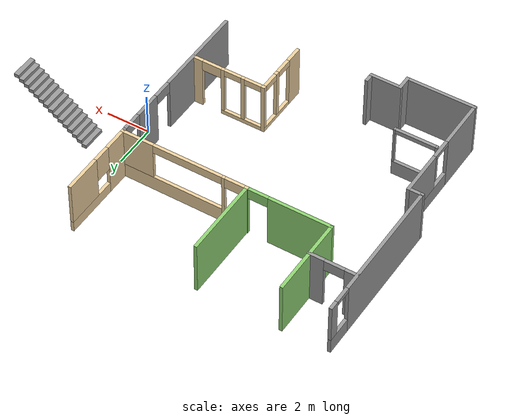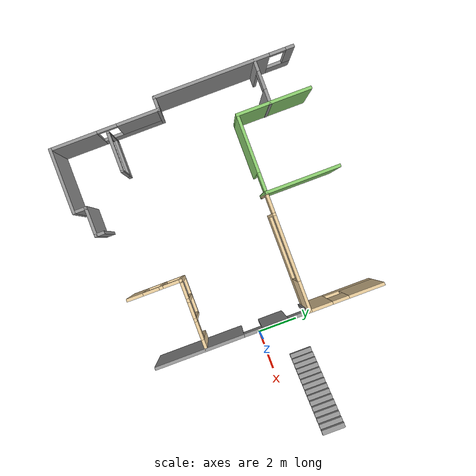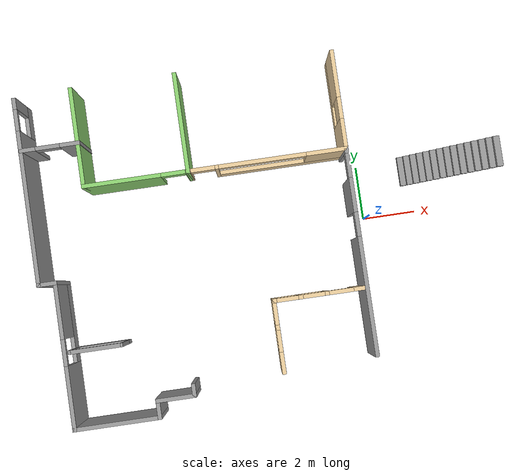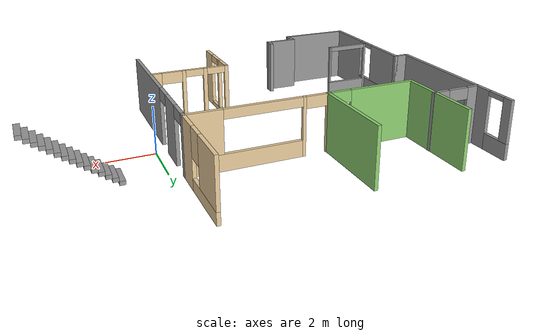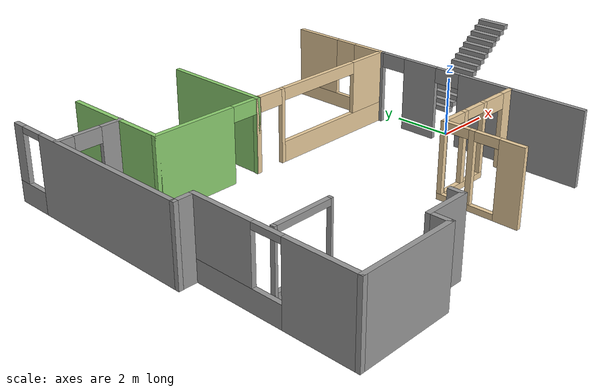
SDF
<sdf version="1.6">
 <model name="dunder_mifflin_scranton_full">
  <pose>-0.003881 -0.031915 0 0 -0 0</pose>
  <link name="Stairs_0">
   <visual name="Stairs_0_Visual_0">
    <pose>1.73013 1.63779 0.083333 0 -0 1.5708</pose>
    <geometry><box><size>1.12038 0.229766 0.166667</size></box></geometry>
    <material>
     <script><uri>file://media/materials/scripts/gazebo.material</uri><name>Gazebo/Grey</name></script>
     <ambient>1 1 1 1</ambient>
    </material>
    <meta><layer>0</layer></meta>
   </visual>
   <collision name="Stairs_0_Collision_0">
    <geometry><box><size>1.12038 0.229766 0.166667</size></box></geometry>
    <pose>1.73013 1.63779 0.083333 0 -0 1.5708</pose>
   </collision>
   <visual name="Stairs_0_Visual_1">
    <pose>1.9599 1.63779 0.25 0 -0 1.5708</pose>
    <geometry><box><size>1.12038 0.229766 0.166667</size></box></geometry>
    <material>
     <script><uri>file://media/materials/scripts/gazebo.material</uri><name>Gazebo/Grey</name></script>
     <ambient>1 1 1 1</ambient>
    </material>
    <meta><layer>0</layer></meta>
   </visual>
   <collision name="Stairs_0_Collision_1">
    <geometry><box><size>1.12038 0.229766 0.166667</size></box></geometry>
    <pose>1.9599 1.63779 0.25 0 -0 1.5708</pose>
   </collision>
   <visual name="Stairs_0_Visual_2">
    <pose>2.18967 1.63779 0.416667 0 -0 1.5708</pose>
    <geometry><box><size>1.12038 0.229766 0.166667</size></box></geometry>
    <material>
     <script><uri>file://media/materials/scripts/gazebo.material</uri><name>Gazebo/Grey</name></script>
     <ambient>1 1 1 1</ambient>
    </material>
    <meta><layer>0</layer></meta>
   </visual>
   <collision name="Stairs_0_Collision_2">
    <geometry><box><size>1.12038 0.229766 0.166667</size></box></geometry>
    <pose>2.18967 1.63779 0.416667 0 -0 1.5708</pose>
   </collision>
   <visual name="Stairs_0_Visual_3">
    <pose>2.41944 1.63779 0.583333 0 -0 1.5708</pose>
    <geometry><box><size>1.12038 0.229766 0.166667</size></box></geometry>
    <material>
     <script><uri>file://media/materials/scripts/gazebo.material</uri><name>Gazebo/Grey</name></script>
     <ambient>1 1 1 1</ambient>
    </material>
    <meta><layer>0</layer></meta>
   </visual>
   <collision name="Stairs_0_Collision_3">
    <geometry><box><size>1.12038 0.229766 0.166667</size></box></geometry>
    <pose>2.41944 1.63779 0.583333 0 -0 1.5708</pose>
   </collision>
   <visual name="Stairs_0_Visual_4">
    <pose>2.6492 1.63779 0.75 0 -0 1.5708</pose>
    <geometry><box><size>1.12038 0.229766 0.166667</size></box></geometry>
    <material>
     <script><uri>file://media/materials/scripts/gazebo.material</uri><name>Gazebo/Grey</name></script>
     <ambient>1 1 1 1</ambient>
    </material>
    <meta><layer>0</layer></meta>
   </visual>
   <collision name="Stairs_0_Collision_4">
    <geometry><box><size>1.12038 0.229766 0.166667</size></box></geometry>
    <pose>2.6492 1.63779 0.75 0 -0 1.5708</pose>
   </collision>
   <visual name="Stairs_0_Visual_5">
    <pose>2.87897 1.63779 0.916667 0 -0 1.5708</pose>
    <geometry><box><size>1.12038 0.229766 0.166667</size></box></geometry>
    <material>
     <script><uri>file://media/materials/scripts/gazebo.material</uri><name>Gazebo/Grey</name></script>
     <ambient>1 1 1 1</ambient>
    </material>
    <meta><layer>0</layer></meta>
   </visual>
   <collision name="Stairs_0_Collision_5">
    <geometry><box><size>1.12038 0.229766 0.166667</size></box></geometry>
    <pose>2.87897 1.63779 0.916667 0 -0 1.5708</pose>
   </collision>
   <visual name="Stairs_0_Visual_6">
    <pose>3.10873 1.63779 1.08333 0 -0 1.5708</pose>
    <geometry><box><size>1.12038 0.229766 0.166667</size></box></geometry>
    <material>
     <script><uri>file://media/materials/scripts/gazebo.material</uri><name>Gazebo/Grey</name></script>
     <ambient>1 1 1 1</ambient>
    </material>
    <meta><layer>0</layer></meta>
   </visual>
   <collision name="Stairs_0_Collision_6">
    <geometry><box><size>1.12038 0.229766 0.166667</size></box></geometry>
    <pose>3.10873 1.63779 1.08333 0 -0 1.5708</pose>
   </collision>
   <visual name="Stairs_0_Visual_7">
    <pose>3.3385 1.63779 1.25 0 -0 1.5708</pose>
    <geometry><box><size>1.12038 0.229766 0.166667</size></box></geometry>
    <material>
     <script><uri>file://media/materials/scripts/gazebo.material</uri><name>Gazebo/Grey</name></script>
     <ambient>1 1 1 1</ambient>
    </material>
    <meta><layer>0</layer></meta>
   </visual>
   <collision name="Stairs_0_Collision_7">
    <geometry><box><size>1.12038 0.229766 0.166667</size></box></geometry>
    <pose>3.3385 1.63779 1.25 0 -0 1.5708</pose>
   </collision>
   <visual name="Stairs_0_Visual_8">
    <pose>3.56827 1.63779 1.41667 0 -0 1.5708</pose>
    <geometry><box><size>1.12038 0.229766 0.166667</size></box></geometry>
    <material>
     <script><uri>file://media/materials/scripts/gazebo.material</uri><name>Gazebo/Grey</name></script>
     <ambient>1 1 1 1</ambient>
    </material>
    <meta><layer>0</layer></meta>
   </visual>
   <collision name="Stairs_0_Collision_8">
    <geometry><box><size>1.12038 0.229766 0.166667</size></box></geometry>
    <pose>3.56827 1.63779 1.41667 0 -0 1.5708</pose>
   </collision>
   <visual name="Stairs_0_Visual_9">
    <pose>3.79803 1.63779 1.58333 0 -0 1.5708</pose>
    <geometry><box><size>1.12038 0.229766 0.166667</size></box></geometry>
    <material>
     <script><uri>file://media/materials/scripts/gazebo.material</uri><name>Gazebo/Grey</name></script>
     <ambient>1 1 1 1</ambient>
    </material>
    <meta><layer>0</layer></meta>
   </visual>
   <collision name="Stairs_0_Collision_9">
    <geometry><box><size>1.12038 0.229766 0.166667</size></box></geometry>
    <pose>3.79803 1.63779 1.58333 0 -0 1.5708</pose>
   </collision>
   <visual name="Stairs_0_Visual_10">
    <pose>4.0278 1.63779 1.75 0 -0 1.5708</pose>
    <geometry><box><size>1.12038 0.229766 0.166667</size></box></geometry>
    <material>
     <script><uri>file://media/materials/scripts/gazebo.material</uri><name>Gazebo/Grey</name></script>
     <ambient>1 1 1 1</ambient>
    </material>
    <meta><layer>0</layer></meta>
   </visual>
   <collision name="Stairs_0_Collision_10">
    <geometry><box><size>1.12038 0.229766 0.166667</size></box></geometry>
    <pose>4.0278 1.63779 1.75 0 -0 1.5708</pose>
   </collision>
   <visual name="Stairs_0_Visual_11">
    <pose>4.25757 1.63779 1.91667 0 -0 1.5708</pose>
    <geometry><box><size>1.12038 0.229766 0.166667</size></box></geometry>
    <material>
     <script><uri>file://media/materials/scripts/gazebo.material</uri><name>Gazebo/Grey</name></script>
     <ambient>1 1 1 1</ambient>
    </material>
    <meta><layer>0</layer></meta>
   </visual>
   <collision name="Stairs_0_Collision_11">
    <geometry><box><size>1.12038 0.229766 0.166667</size></box></geometry>
    <pose>4.25757 1.63779 1.91667 0 -0 1.5708</pose>
   </collision>
   <visual name="Stairs_0_Visual_12">
    <pose>4.48733 1.63779 2.08333 0 -0 1.5708</pose>
    <geometry><box><size>1.12038 0.229766 0.166667</size></box></geometry>
    <material>
     <script><uri>file://media/materials/scripts/gazebo.material</uri><name>Gazebo/Grey</name></script>
     <ambient>1 1 1 1</ambient>
    </material>
    <meta><layer>0</layer></meta>
   </visual>
   <collision name="Stairs_0_Collision_12">
    <geometry><box><size>1.12038 0.229766 0.166667</size></box></geometry>
    <pose>4.48733 1.63779 2.08333 0 -0 1.5708</pose>
   </collision>
   <visual name="Stairs_0_Visual_13">
    <pose>4.7171 1.63779 2.25 0 -0 1.5708</pose>
    <geometry><box><size>1.12038 0.229766 0.166667</size></box></geometry>
    <material>
     <script><uri>file://media/materials/scripts/gazebo.material</uri><name>Gazebo/Grey</name></script>
     <ambient>1 1 1 1</ambient>
    </material>
    <meta><layer>0</layer></meta>
   </visual>
   <collision name="Stairs_0_Collision_13">
    <geometry><box><size>1.12038 0.229766 0.166667</size></box></geometry>
    <pose>4.7171 1.63779 2.25 0 -0 1.5708</pose>
   </collision>
   <visual name="Stairs_0_Visual_14">
    <pose>4.94687 1.63779 2.41667 0 -0 1.5708</pose>
    <geometry><box><size>1.12038 0.229766 0.166667</size></box></geometry>
    <material>
     <script><uri>file://media/materials/scripts/gazebo.material</uri><name>Gazebo/Grey</name></script>
     <ambient>1 1 1 1</ambient>
    </material>
    <meta><layer>0</layer></meta>
   </visual>
   <collision name="Stairs_0_Collision_14">
    <geometry><box><size>1.12038 0.229766 0.166667</size></box></geometry>
    <pose>4.94687 1.63779 2.41667 0 -0 1.5708</pose>
   </collision>
  </link>
  <link name="Wall_10">
   <collision name="Wall_10_Collision">
    <geometry><box><size>1.5 0.15 2.5</size></box></geometry>
    <pose>0 0 1.25 0 -0 0</pose>
   </collision>
   <visual name="Wall_10_Visual">
    <pose>0 0 1.25 0 -0 0</pose>
    <geometry><box><size>1.5 0.15 2.5</size></box></geometry>
    <material>
     <script><uri>file://media/materials/scripts/gazebo.material</uri><name>Gazebo/Grey</name></script>
     <ambient>1 1 1 1</ambient>
    </material>
    <meta><layer>0</layer></meta>
   </visual>
   <pose>-7.95712 -5.55 0 0 -0 3.14159</pose>
  </link>
  <link name="Wall_11">
   <collision name="Wall_11_Collision">
    <geometry><box><size>0.75 0.15 2.5</size></box></geometry>
    <pose>0 0 1.25 0 -0 0</pose>
   </collision>
   <visual name="Wall_11_Visual">
    <pose>0 0 1.25 0 -0 0</pose>
    <geometry><box><size>0.75 0.15 2.5</size></box></geometry>
    <material>
     <script><uri>file://media/materials/scripts/gazebo.material</uri><name>Gazebo/Grey</name></script>
     <ambient>1 1 1 1</ambient>
    </material>
    <meta><layer>0</layer></meta>
   </visual>
   <pose>-8.63212 -5.85 0 0 -0 -1.5708</pose>
  </link>
  <link name="Wall_12">
   <collision name="Wall_12_Collision">
    <geometry><box><size>3.25 0.15 2.5</size></box></geometry>
    <pose>0 0 1.25 0 -0 0</pose>
   </collision>
   <visual name="Wall_12_Visual">
    <pose>0 0 1.25 0 -0 0</pose>
    <geometry><box><size>3.25 0.15 2.5</size></box></geometry>
    <material>
     <script><uri>file://media/materials/scripts/gazebo.material</uri><name>Gazebo/Grey</name></script>
     <ambient>1 1 1 1</ambient>
    </material>
    <meta><layer>0</layer></meta>
   </visual>
   <pose>-10.1821 -6.15 0 0 -0 3.14159</pose>
  </link>
  <link name="Wall_13">
   <pose>-11.7321 -3.475 0 0 -0 1.5708</pose>
   <visual name="Wall_13_Visual_0">
    <pose>-1.56118 0 1.25 0 -0 0</pose>
    <geometry><box><size>2.37764 0.15 2.5</size></box></geometry>
    <material>
     <script><uri>file://media/materials/scripts/gazebo.material</uri><name>Gazebo/Grey</name></script>
     <ambient>1 1 1 1</ambient>
    </material>
    <meta><layer>0</layer></meta>
   </visual>
   <collision name="Wall_13_Collision_0">
    <geometry><box><size>2.37764 0.15 2.5</size></box></geometry>
    <pose>-1.56118 0 1.25 0 -0 0</pose>
   </collision>
   <visual name="Wall_13_Visual_1">
    <pose>1.18882 0 0.35 0 -0 0</pose>
    <geometry><box><size>3.12236 0.15 0.7</size></box></geometry>
    <material>
     <script><uri>file://media/materials/scripts/gazebo.material</uri><name>Gazebo/Grey</name></script>
     <ambient>1 1 1 1</ambient>
    </material>
    <meta><layer>0</layer></meta>
   </visual>
   <collision name="Wall_13_Collision_1">
    <geometry><box><size>3.12236 0.15 0.7</size></box></geometry>
    <pose>1.18882 0 0.35 0 -0 0</pose>
   </collision>
   <visual name="Wall_13_Visual_2">
    <pose>1.67832 0 1.6 0 -0 0</pose>
    <geometry><box><size>2.14336 0.15 1.8</size></box></geometry>
    <material>
     <script><uri>file://media/materials/scripts/gazebo.material</uri><name>Gazebo/Grey</name></script>
     <ambient>1 1 1 1</ambient>
    </material>
    <meta><layer>0</layer></meta>
   </visual>
   <collision name="Wall_13_Collision_2">
    <geometry><box><size>2.14336 0.15 1.8</size></box></geometry>
    <pose>1.67832 0 1.6 0 -0 0</pose>
   </collision>
   <visual name="Wall_13_Visual_3">
    <pose>0.117145 0 2.4 0 -0 0</pose>
    <geometry><box><size>0.979 0.15 0.2</size></box></geometry>
    <material>
     <script><uri>file://media/materials/scripts/gazebo.material</uri><name>Gazebo/Grey</name></script>
     <ambient>1 1 1 1</ambient>
    </material>
    <meta><layer>0</layer></meta>
   </visual>
   <collision name="Wall_13_Collision_3">
    <geometry><box><size>0.979 0.15 0.2</size></box></geometry>
    <pose>0.117145 0 2.4 0 -0 0</pose>
   </collision>
  </link>
  <link name="Wall_14">
   <collision name="Wall_14_Collision">
    <geometry><box><size>0.75 0.15 2.5</size></box></geometry>
    <pose>0 0 1.25 0 -0 0</pose>
   </collision>
   <visual name="Wall_14_Visual">
    <pose>0 0 1.25 0 -0 0</pose>
    <geometry><box><size>0.75 0.15 2.5</size></box></geometry>
    <material>
     <script><uri>file://media/materials/scripts/gazebo.material</uri><name>Gazebo/Grey</name></script>
     <ambient>1 1 1 1</ambient>
    </material>
    <meta><layer>0</layer></meta>
   </visual>
   <pose>-12.0321 -0.8 0 0 -0 3.14159</pose>
  </link>
  <link name="Wall_15">
   <pose>-12.3321 2.625 0 0 -0 1.5708</pose>
   <visual name="Wall_15_Visual_0">
    <pose>-0.612803 0 1.25 0 -0 0</pose>
    <geometry><box><size>5.7744 0.15 2.5</size></box></geometry>
    <material>
     <script><uri>file://media/materials/scripts/gazebo.material</uri><name>Gazebo/Grey</name></script>
     <ambient>1 1 1 1</ambient>
    </material>
    <meta><layer>0</layer></meta>
   </visual>
   <collision name="Wall_15_Collision_0">
    <geometry><box><size>5.7744 0.15 2.5</size></box></geometry>
    <pose>-0.612803 0 1.25 0 -0 0</pose>
   </collision>
   <visual name="Wall_15_Visual_1">
    <pose>2.8872 0 0.35 0 -0 0</pose>
    <geometry><box><size>1.22561 0.15 0.7</size></box></geometry>
    <material>
     <script><uri>file://media/materials/scripts/gazebo.material</uri><name>Gazebo/Grey</name></script>
     <ambient>1 1 1 1</ambient>
    </material>
    <meta><layer>0</layer></meta>
   </visual>
   <collision name="Wall_15_Collision_1">
    <geometry><box><size>1.22561 0.15 0.7</size></box></geometry>
    <pose>2.8872 0 0.35 0 -0 0</pose>
   </collision>
   <visual name="Wall_15_Visual_2">
    <pose>3.2872 0 1.6 0 -0 0</pose>
    <geometry><box><size>0.425605 0.15 1.8</size></box></geometry>
    <material>
     <script><uri>file://media/materials/scripts/gazebo.material</uri><name>Gazebo/Grey</name></script>
     <ambient>1 1 1 1</ambient>
    </material>
    <meta><layer>0</layer></meta>
   </visual>
   <collision name="Wall_15_Collision_2">
    <geometry><box><size>0.425605 0.15 1.8</size></box></geometry>
    <pose>3.2872 0 1.6 0 -0 0</pose>
   </collision>
   <visual name="Wall_15_Visual_3">
    <pose>2.6744 0 2.4 0 -0 0</pose>
    <geometry><box><size>0.8 0.15 0.2</size></box></geometry>
    <material>
     <script><uri>file://media/materials/scripts/gazebo.material</uri><name>Gazebo/Grey</name></script>
     <ambient>1 1 1 1</ambient>
    </material>
    <meta><layer>0</layer></meta>
   </visual>
   <collision name="Wall_15_Collision_3">
    <geometry><box><size>0.8 0.15 0.2</size></box></geometry>
    <pose>2.6744 0 2.4 0 -0 0</pose>
   </collision>
  </link>
  <link name="Wall_19">
   <collision name="Wall_19_Collision">
    <geometry><box><size>3.75 0.15 2.5</size></box></geometry>
    <pose>0 0 1.25 0 -0 0</pose>
   </collision>
   <visual name="Wall_19_Visual">
    <pose>0 0 1.25 0 -0 0</pose>
    <geometry><box><size>3.75 0.15 2.5</size></box></geometry>
    <material>
     <script><uri>file://media/materials/scripts/gazebo.material</uri><name>Gazebo/Grey</name></script>
     <ambient>0.556863 0.823529 0.443137 1</ambient>
    </material>
    <meta><layer>0</layer></meta>
   </visual>
   <pose>-10.2322 4.33925 0 0 -0 -1.5708</pose>
  </link>
  <link name="Wall_20">
   <pose>-8.30724 2.53925 0 0 -0 0</pose>
   <visual name="Wall_20_Visual_0">
    <pose>-0.536103 0 1.25 0 -0 0</pose>
    <geometry><box><size>2.92779 0.15 2.5</size></box></geometry>
    <material>
     <script><uri>file://media/materials/scripts/gazebo.material</uri><name>Gazebo/Grey</name></script>
     <ambient>0.556863 0.823529 0.443137 1</ambient>
    </material>
    <meta><layer>0</layer></meta>
   </visual>
   <collision name="Wall_20_Collision_0">
    <geometry><box><size>2.92779 0.15 2.5</size></box></geometry>
    <pose>-0.536103 0 1.25 0 -0 0</pose>
   </collision>
   <visual name="Wall_20_Visual_1">
    <pose>1.9139 0 1.25 0 -0 0</pose>
    <geometry><box><size>0.172206 0.15 2.5</size></box></geometry>
    <material>
     <script><uri>file://media/materials/scripts/gazebo.material</uri><name>Gazebo/Grey</name></script>
     <ambient>0.556863 0.823529 0.443137 1</ambient>
    </material>
    <meta><layer>0</layer></meta>
   </visual>
   <collision name="Wall_20_Collision_1">
    <geometry><box><size>0.172206 0.15 2.5</size></box></geometry>
    <pose>1.9139 0 1.25 0 -0 0</pose>
   </collision>
   <visual name="Wall_20_Visual_2">
    <pose>1.37779 0 2.25 0 -0 0</pose>
    <geometry><box><size>0.9 0.15 0.5</size></box></geometry>
    <material>
     <script><uri>file://media/materials/scripts/gazebo.material</uri><name>Gazebo/Grey</name></script>
     <ambient>0.556863 0.823529 0.443137 1</ambient>
    </material>
    <meta><layer>0</layer></meta>
   </visual>
   <collision name="Wall_20_Collision_2">
    <geometry><box><size>0.9 0.15 0.5</size></box></geometry>
    <pose>1.37779 0 2.25 0 -0 0</pose>
   </collision>
  </link>
  <link name="Wall_21">
   <collision name="Wall_21_Collision">
    <geometry><box><size>3.75 0.15 2.5</size></box></geometry>
    <pose>0 0 1.25 0 -0 0</pose>
   </collision>
   <visual name="Wall_21_Visual">
    <pose>0 0 1.25 0 -0 0</pose>
    <geometry><box><size>3.75 0.15 2.5</size></box></geometry>
    <material>
     <script><uri>file://media/materials/scripts/gazebo.material</uri><name>Gazebo/Grey</name></script>
     <ambient>0.556863 0.823529 0.443137 1</ambient>
    </material>
    <meta><layer>0</layer></meta>
   </visual>
   <pose>-6.38225 4.33925 0 0 -0 1.5708</pose>
  </link>
  <link name="Wall_23">
   <pose>-3.45724 2.53925 0 0 -0 0</pose>
   <visual name="Wall_23_Visual_0">
    <pose>-2.91414 0 1.25 0 -0 0</pose>
    <geometry><box><size>0.171718 0.15 2.5</size></box></geometry>
    <material>
     <script><uri>file://media/materials/scripts/gazebo.material</uri><name>Gazebo/Grey</name></script>
     <ambient>0.921569 0.807843 0.615686 1</ambient>
    </material>
    <meta><layer>0</layer></meta>
   </visual>
   <collision name="Wall_23_Collision_0">
    <geometry><box><size>0.171718 0.15 2.5</size></box></geometry>
    <pose>-2.91414 0 1.25 0 -0 0</pose>
   </collision>
   <visual name="Wall_23_Visual_1">
    <pose>-1.86179 0 1.25 0 -0 0</pose>
    <geometry><box><size>0.132993 0.15 2.5</size></box></geometry>
    <material>
     <script><uri>file://media/materials/scripts/gazebo.material</uri><name>Gazebo/Grey</name></script>
     <ambient>0.921569 0.807843 0.615686 1</ambient>
    </material>
    <meta><layer>0</layer></meta>
   </visual>
   <collision name="Wall_23_Collision_1">
    <geometry><box><size>0.132993 0.15 2.5</size></box></geometry>
    <pose>-1.86179 0 1.25 0 -0 0</pose>
   </collision>
   <visual name="Wall_23_Visual_2">
    <pose>0.602356 0 0.35 0 -0 0</pose>
    <geometry><box><size>4.79529 0.15 0.7</size></box></geometry>
    <material>
     <script><uri>file://media/materials/scripts/gazebo.material</uri><name>Gazebo/Grey</name></script>
     <ambient>0.921569 0.807843 0.615686 1</ambient>
    </material>
    <meta><layer>0</layer></meta>
   </visual>
   <collision name="Wall_23_Collision_2">
    <geometry><box><size>4.79529 0.15 0.7</size></box></geometry>
    <pose>0.602356 0 0.35 0 -0 0</pose>
   </collision>
   <visual name="Wall_23_Visual_3">
    <pose>2.22271 0 1.6 0 -0 0</pose>
    <geometry><box><size>1.55459 0.15 1.8</size></box></geometry>
    <material>
     <script><uri>file://media/materials/scripts/gazebo.material</uri><name>Gazebo/Grey</name></script>
     <ambient>0.921569 0.807843 0.615686 1</ambient>
    </material>
    <meta><layer>0</layer></meta>
   </visual>
   <collision name="Wall_23_Collision_3">
    <geometry><box><size>1.55459 0.15 1.8</size></box></geometry>
    <pose>2.22271 0 1.6 0 -0 0</pose>
   </collision>
   <visual name="Wall_23_Visual_4">
    <pose>-2.37828 0 2.25 0 -0 0</pose>
    <geometry><box><size>0.9 0.15 0.5</size></box></geometry>
    <material>
     <script><uri>file://media/materials/scripts/gazebo.material</uri><name>Gazebo/Grey</name></script>
     <ambient>0.921569 0.807843 0.615686 1</ambient>
    </material>
    <meta><layer>0</layer></meta>
   </visual>
   <collision name="Wall_23_Collision_4">
    <geometry><box><size>0.9 0.15 0.5</size></box></geometry>
    <pose>-2.37828 0 2.25 0 -0 0</pose>
   </collision>
   <visual name="Wall_23_Visual_5">
    <pose>-0.174937 0 2.3 0 -0 0</pose>
    <geometry><box><size>3.2407 0.15 0.4</size></box></geometry>
    <material>
     <script><uri>file://media/materials/scripts/gazebo.material</uri><name>Gazebo/Grey</name></script>
     <ambient>0.921569 0.807843 0.615686 1</ambient>
    </material>
    <meta><layer>0</layer></meta>
   </visual>
   <collision name="Wall_23_Collision_5">
    <geometry><box><size>3.2407 0.15 0.4</size></box></geometry>
    <pose>-0.174937 0 2.3 0 -0 0</pose>
   </collision>
  </link>
  <link name="Wall_24">
   <pose>-0.532245 4.33925 0 0 -0 1.5708</pose>
   <visual name="Wall_24_Visual_0">
    <pose>-1.28185 0 1.25 0 -0 0</pose>
    <geometry><box><size>1.1863 0.15 2.5</size></box></geometry>
    <material>
     <script><uri>file://media/materials/scripts/gazebo.material</uri><name>Gazebo/Grey</name></script>
     <ambient>0.921569 0.807843 0.615686 1</ambient>
    </material>
    <meta><layer>0</layer></meta>
   </visual>
   <collision name="Wall_24_Collision_0">
    <geometry><box><size>1.1863 0.15 2.5</size></box></geometry>
    <pose>-1.28185 0 1.25 0 -0 0</pose>
   </collision>
   <visual name="Wall_24_Visual_1">
    <pose>0.59315 0 0.25 0 -0 0</pose>
    <geometry><box><size>2.5637 0.15 0.5</size></box></geometry>
    <material>
     <script><uri>file://media/materials/scripts/gazebo.material</uri><name>Gazebo/Grey</name></script>
     <ambient>0.921569 0.807843 0.615686 1</ambient>
    </material>
    <meta><layer>0</layer></meta>
   </visual>
   <collision name="Wall_24_Collision_1">
    <geometry><box><size>2.5637 0.15 0.5</size></box></geometry>
    <pose>0.59315 0 0.25 0 -0 0</pose>
   </collision>
   <visual name="Wall_24_Visual_2">
    <pose>0.99315 0 1.5 0 -0 0</pose>
    <geometry><box><size>1.7637 0.15 2</size></box></geometry>
    <material>
     <script><uri>file://media/materials/scripts/gazebo.material</uri><name>Gazebo/Grey</name></script>
     <ambient>0.921569 0.807843 0.615686 1</ambient>
    </material>
    <meta><layer>0</layer></meta>
   </visual>
   <collision name="Wall_24_Collision_2">
    <geometry><box><size>1.7637 0.15 2</size></box></geometry>
    <pose>0.99315 0 1.5 0 -0 0</pose>
   </collision>
   <visual name="Wall_24_Visual_3">
    <pose>-0.288699 0 1.9 0 -0 0</pose>
    <geometry><box><size>0.8 0.15 1.2</size></box></geometry>
    <material>
     <script><uri>file://media/materials/scripts/gazebo.material</uri><name>Gazebo/Grey</name></script>
     <ambient>0.921569 0.807843 0.615686 1</ambient>
    </material>
    <meta><layer>0</layer></meta>
   </visual>
   <collision name="Wall_24_Collision_3">
    <geometry><box><size>0.8 0.15 1.2</size></box></geometry>
    <pose>-0.288699 0 1.9 0 -0 0</pose>
   </collision>
  </link>
  <link name="Wall_26">
   <pose>-0.532245 -1.26075 0 0 -0 -1.5708</pose>
   <visual name="Wall_26_Visual_0">
    <pose>-3.74743 0 1.25 0 -0 0</pose>
    <geometry><box><size>0.255133 0.15 2.5</size></box></geometry>
    <material>
     <script><uri>file://media/materials/scripts/gazebo.material</uri><name>Gazebo/Grey</name></script>
     <ambient>1 1 1 1</ambient>
    </material>
    <meta><layer>0</layer></meta>
   </visual>
   <collision name="Wall_26_Collision_0">
    <geometry><box><size>0.255133 0.15 2.5</size></box></geometry>
    <pose>-3.74743 0 1.25 0 -0 0</pose>
   </collision>
   <visual name="Wall_26_Visual_1">
    <pose>-2.08102 0 1.25 0 -0 0</pose>
    <geometry><box><size>1.27769 0.15 2.5</size></box></geometry>
    <material>
     <script><uri>file://media/materials/scripts/gazebo.material</uri><name>Gazebo/Grey</name></script>
     <ambient>1 1 1 1</ambient>
    </material>
    <meta><layer>0</layer></meta>
   </visual>
   <collision name="Wall_26_Collision_1">
    <geometry><box><size>1.27769 0.15 2.5</size></box></geometry>
    <pose>-2.08102 0 1.25 0 -0 0</pose>
   </collision>
   <visual name="Wall_26_Visual_2">
    <pose>1.66641 0 1.25 0 -0 0</pose>
    <geometry><box><size>4.41718 0.15 2.5</size></box></geometry>
    <material>
     <script><uri>file://media/materials/scripts/gazebo.material</uri><name>Gazebo/Grey</name></script>
     <ambient>1 1 1 1</ambient>
    </material>
    <meta><layer>0</layer></meta>
   </visual>
   <collision name="Wall_26_Collision_2">
    <geometry><box><size>4.41718 0.15 2.5</size></box></geometry>
    <pose>1.66641 0 1.25 0 -0 0</pose>
   </collision>
   <visual name="Wall_26_Visual_3">
    <pose>-3.16987 0 2.25 0 -0 0</pose>
    <geometry><box><size>0.9 0.15 0.5</size></box></geometry>
    <material>
     <script><uri>file://media/materials/scripts/gazebo.material</uri><name>Gazebo/Grey</name></script>
     <ambient>1 1 1 1</ambient>
    </material>
    <meta><layer>0</layer></meta>
   </visual>
   <collision name="Wall_26_Collision_3">
    <geometry><box><size>0.9 0.15 0.5</size></box></geometry>
    <pose>-3.16987 0 2.25 0 -0 0</pose>
   </collision>
   <visual name="Wall_26_Visual_4">
    <pose>-0.992175 0 2.25 0 -0 0</pose>
    <geometry><box><size>0.9 0.15 0.5</size></box></geometry>
    <material>
     <script><uri>file://media/materials/scripts/gazebo.material</uri><name>Gazebo/Grey</name></script>
     <ambient>1 1 1 1</ambient>
    </material>
    <meta><layer>0</layer></meta>
   </visual>
   <collision name="Wall_26_Collision_4">
    <geometry><box><size>0.9 0.15 0.5</size></box></geometry>
    <pose>-0.992175 0 2.25 0 -0 0</pose>
   </collision>
  </link>
  <link name="Wall_28">
   <pose>-3.95331 -3.89431 0 0 -0 1.5708</pose>
   <visual name="Wall_28_Visual_0">
    <pose>-0.969422 0 1.25 0 -0 0</pose>
    <geometry><box><size>0.811156 0.15 2.5</size></box></geometry>
    <material>
     <script><uri>file://media/materials/scripts/gazebo.material</uri><name>Gazebo/Grey</name></script>
     <ambient>0.921569 0.807843 0.615686 1</ambient>
    </material>
    <meta><layer>0</layer></meta>
   </visual>
   <collision name="Wall_28_Collision_0">
    <geometry><box><size>0.811156 0.15 2.5</size></box></geometry>
    <pose>-0.969422 0 1.25 0 -0 0</pose>
   </collision>
   <visual name="Wall_28_Visual_1">
    <pose>0.405578 0 0.1 0 -0 0</pose>
    <geometry><box><size>1.93884 0.15 0.2</size></box></geometry>
    <material>
     <script><uri>file://media/materials/scripts/gazebo.material</uri><name>Gazebo/Grey</name></script>
     <ambient>0.921569 0.807843 0.615686 1</ambient>
    </material>
    <meta><layer>0</layer></meta>
   </visual>
   <collision name="Wall_28_Collision_1">
    <geometry><box><size>1.93884 0.15 0.2</size></box></geometry>
    <pose>0.405578 0 0.1 0 -0 0</pose>
   </collision>
   <visual name="Wall_28_Visual_2">
    <pose>0.328659 0 1.35 0 -0 0</pose>
    <geometry><box><size>0.185005 0.15 2.3</size></box></geometry>
    <material>
     <script><uri>file://media/materials/scripts/gazebo.material</uri><name>Gazebo/Grey</name></script>
     <ambient>0.921569 0.807843 0.615686 1</ambient>
    </material>
    <meta><layer>0</layer></meta>
   </visual>
   <collision name="Wall_28_Collision_2">
    <geometry><box><size>0.185005 0.15 2.3</size></box></geometry>
    <pose>0.328659 0 1.35 0 -0 0</pose>
   </collision>
   <visual name="Wall_28_Visual_3">
    <pose>1.29808 0 1.35 0 -0 0</pose>
    <geometry><box><size>0.153838 0.15 2.3</size></box></geometry>
    <material>
     <script><uri>file://media/materials/scripts/gazebo.material</uri><name>Gazebo/Grey</name></script>
     <ambient>0.921569 0.807843 0.615686 1</ambient>
    </material>
    <meta><layer>0</layer></meta>
   </visual>
   <collision name="Wall_28_Collision_3">
    <geometry><box><size>0.153838 0.15 2.3</size></box></geometry>
    <pose>1.29808 0 1.35 0 -0 0</pose>
   </collision>
   <visual name="Wall_28_Visual_4">
    <pose>-0.163844 0 2.35 0 -0 0</pose>
    <geometry><box><size>0.8 0.15 0.3</size></box></geometry>
    <material>
     <script><uri>file://media/materials/scripts/gazebo.material</uri><name>Gazebo/Grey</name></script>
     <ambient>0.921569 0.807843 0.615686 1</ambient>
    </material>
    <meta><layer>0</layer></meta>
   </visual>
   <collision name="Wall_28_Collision_4">
    <geometry><box><size>0.8 0.15 0.3</size></box></geometry>
    <pose>-0.163844 0 2.35 0 -0 0</pose>
   </collision>
   <visual name="Wall_28_Visual_5">
    <pose>0.821162 0 2.35 0 -0 0</pose>
    <geometry><box><size>0.8 0.15 0.3</size></box></geometry>
    <material>
     <script><uri>file://media/materials/scripts/gazebo.material</uri><name>Gazebo/Grey</name></script>
     <ambient>0.921569 0.807843 0.615686 1</ambient>
    </material>
    <meta><layer>0</layer></meta>
   </visual>
   <collision name="Wall_28_Collision_5">
    <geometry><box><size>0.8 0.15 0.3</size></box></geometry>
    <pose>0.821162 0 2.35 0 -0 0</pose>
   </collision>
  </link>
  <link name="Wall_29">
   <pose>-2.27831 -2.59431 0 0 -0 0</pose>
   <visual name="Wall_29_Visual_0">
    <pose>-1.66131 0 1.25 0 -0 0</pose>
    <geometry><box><size>0.177371 0.15 2.5</size></box></geometry>
    <material>
     <script><uri>file://media/materials/scripts/gazebo.material</uri><name>Gazebo/Grey</name></script>
     <ambient>0.921569 0.807843 0.615686 1</ambient>
    </material>
    <meta><layer>0</layer></meta>
   </visual>
   <collision name="Wall_29_Collision_0">
    <geometry><box><size>0.177371 0.15 2.5</size></box></geometry>
    <pose>-1.66131 0 1.25 0 -0 0</pose>
   </collision>
   <visual name="Wall_29_Visual_1">
    <pose>1.50358 0 1.25 0 -0 0</pose>
    <geometry><box><size>0.492835 0.15 2.5</size></box></geometry>
    <material>
     <script><uri>file://media/materials/scripts/gazebo.material</uri><name>Gazebo/Grey</name></script>
     <ambient>0.921569 0.807843 0.615686 1</ambient>
    </material>
    <meta><layer>0</layer></meta>
   </visual>
   <collision name="Wall_29_Collision_1">
    <geometry><box><size>0.492835 0.15 2.5</size></box></geometry>
    <pose>1.50358 0 1.25 0 -0 0</pose>
   </collision>
   <visual name="Wall_29_Visual_2">
    <pose>-0.607732 0 0.1 0 -0 0</pose>
    <geometry><box><size>1.92979 0.15 0.2</size></box></geometry>
    <material>
     <script><uri>file://media/materials/scripts/gazebo.material</uri><name>Gazebo/Grey</name></script>
     <ambient>0.921569 0.807843 0.615686 1</ambient>
    </material>
    <meta><layer>0</layer></meta>
   </visual>
   <collision name="Wall_29_Collision_2">
    <geometry><box><size>1.92979 0.15 0.2</size></box></geometry>
    <pose>-0.607732 0 0.1 0 -0 0</pose>
   </collision>
   <visual name="Wall_29_Visual_3">
    <pose>-0.685949 0 1.35 0 -0 0</pose>
    <geometry><box><size>0.17336 0.15 2.3</size></box></geometry>
    <material>
     <script><uri>file://media/materials/scripts/gazebo.material</uri><name>Gazebo/Grey</name></script>
     <ambient>0.921569 0.807843 0.615686 1</ambient>
    </material>
    <meta><layer>0</layer></meta>
   </visual>
   <collision name="Wall_29_Collision_3">
    <geometry><box><size>0.17336 0.15 2.3</size></box></geometry>
    <pose>-0.685949 0 1.35 0 -0 0</pose>
   </collision>
   <visual name="Wall_29_Visual_4">
    <pose>0.278948 0 1.35 0 -0 0</pose>
    <geometry><box><size>0.156434 0.15 2.3</size></box></geometry>
    <material>
     <script><uri>file://media/materials/scripts/gazebo.material</uri><name>Gazebo/Grey</name></script>
     <ambient>0.921569 0.807843 0.615686 1</ambient>
    </material>
    <meta><layer>0</layer></meta>
   </visual>
   <collision name="Wall_29_Collision_4">
    <geometry><box><size>0.156434 0.15 2.3</size></box></geometry>
    <pose>0.278948 0 1.35 0 -0 0</pose>
   </collision>
   <visual name="Wall_29_Visual_5">
    <pose>0.807165 0 2.25 0 -0 0</pose>
    <geometry><box><size>0.9 0.15 0.5</size></box></geometry>
    <material>
     <script><uri>file://media/materials/scripts/gazebo.material</uri><name>Gazebo/Grey</name></script>
     <ambient>0.921569 0.807843 0.615686 1</ambient>
    </material>
    <meta><layer>0</layer></meta>
   </visual>
   <collision name="Wall_29_Collision_5">
    <geometry><box><size>0.9 0.15 0.5</size></box></geometry>
    <pose>0.807165 0 2.25 0 -0 0</pose>
   </collision>
   <visual name="Wall_29_Visual_6">
    <pose>-1.17263 0 2.35 0 -0 0</pose>
    <geometry><box><size>0.8 0.15 0.3</size></box></geometry>
    <material>
     <script><uri>file://media/materials/scripts/gazebo.material</uri><name>Gazebo/Grey</name></script>
     <ambient>0.921569 0.807843 0.615686 1</ambient>
    </material>
    <meta><layer>0</layer></meta>
   </visual>
   <collision name="Wall_29_Collision_6">
    <geometry><box><size>0.8 0.15 0.3</size></box></geometry>
    <pose>-1.17263 0 2.35 0 -0 0</pose>
   </collision>
   <visual name="Wall_29_Visual_7">
    <pose>-0.199269 0 2.35 0 -0 0</pose>
    <geometry><box><size>0.8 0.15 0.3</size></box></geometry>
    <material>
     <script><uri>file://media/materials/scripts/gazebo.material</uri><name>Gazebo/Grey</name></script>
     <ambient>0.921569 0.807843 0.615686 1</ambient>
    </material>
    <meta><layer>0</layer></meta>
   </visual>
   <collision name="Wall_29_Collision_7">
    <geometry><box><size>0.8 0.15 0.3</size></box></geometry>
    <pose>-0.199269 0 2.35 0 -0 0</pose>
   </collision>
  </link>
  <link name="Wall_68">
   <pose>-11.2649 4.15459 0 0 -0 3.14159</pose>
   <visual name="Wall_68_Visual_0">
    <pose>-0.747833 0 1.25 0 -0 0</pose>
    <geometry><box><size>0.754334 0.15 2.5</size></box></geometry>
    <material>
     <script><uri>file://media/materials/scripts/gazebo.material</uri><name>Gazebo/Grey</name></script>
     <ambient>1 1 1 1</ambient>
    </material>
    <meta><layer>0</layer></meta>
   </visual>
   <collision name="Wall_68_Collision_0">
    <geometry><box><size>0.754334 0.15 2.5</size></box></geometry>
    <pose>-0.747833 0 1.25 0 -0 0</pose>
   </collision>
   <visual name="Wall_68_Visual_1">
    <pose>0.827167 0 1.25 0 -0 0</pose>
    <geometry><box><size>0.595666 0.15 2.5</size></box></geometry>
    <material>
     <script><uri>file://media/materials/scripts/gazebo.material</uri><name>Gazebo/Grey</name></script>
     <ambient>1 1 1 1</ambient>
    </material>
    <meta><layer>0</layer></meta>
   </visual>
   <collision name="Wall_68_Collision_1">
    <geometry><box><size>0.595666 0.15 2.5</size></box></geometry>
    <pose>0.827167 0 1.25 0 -0 0</pose>
   </collision>
   <visual name="Wall_68_Visual_2">
    <pose>0.079334 0 2.25 0 -0 0</pose>
    <geometry><box><size>0.9 0.15 0.5</size></box></geometry>
    <material>
     <script><uri>file://media/materials/scripts/gazebo.material</uri><name>Gazebo/Grey</name></script>
     <ambient>1 1 1 1</ambient>
    </material>
    <meta><layer>0</layer></meta>
   </visual>
   <collision name="Wall_68_Collision_2">
    <geometry><box><size>0.9 0.15 0.5</size></box></geometry>
    <pose>0.079334 0 2.25 0 -0 0</pose>
   </collision>
  </link>
  <link name="Wall_75">
   <pose>-10.6016 -3.36883 0 0 -0 0</pose>
   <visual name="Wall_75_Visual_0">
    <pose>-0.952261 0 1.25 0 -0 0</pose>
    <geometry><box><size>0.095478 0.15 2.5</size></box></geometry>
    <material>
     <script><uri>file://media/materials/scripts/gazebo.material</uri><name>Gazebo/Grey</name></script>
     <ambient>1 1 1 1</ambient>
    </material>
    <meta><layer>0</layer></meta>
   </visual>
   <collision name="Wall_75_Collision_0">
    <geometry><box><size>0.095478 0.15 2.5</size></box></geometry>
    <pose>-0.952261 0 1.25 0 -0 0</pose>
   </collision>
   <visual name="Wall_75_Visual_1">
    <pose>0.047739 0 0.35 0 -0 0</pose>
    <geometry><box><size>1.90452 0.15 0.7</size></box></geometry>
    <material>
     <script><uri>file://media/materials/scripts/gazebo.material</uri><name>Gazebo/Grey</name></script>
     <ambient>1 1 1 1</ambient>
    </material>
    <meta><layer>0</layer></meta>
   </visual>
   <collision name="Wall_75_Collision_1">
    <geometry><box><size>1.90452 0.15 0.7</size></box></geometry>
    <pose>0.047739 0 0.35 0 -0 0</pose>
   </collision>
   <visual name="Wall_75_Visual_2">
    <pose>0.957739 0 1.6 0 -0 0</pose>
    <geometry><box><size>0.084522 0.15 1.8</size></box></geometry>
    <material>
     <script><uri>file://media/materials/scripts/gazebo.material</uri><name>Gazebo/Grey</name></script>
     <ambient>1 1 1 1</ambient>
    </material>
    <meta><layer>0</layer></meta>
   </visual>
   <collision name="Wall_75_Collision_2">
    <geometry><box><size>0.084522 0.15 1.8</size></box></geometry>
    <pose>0.957739 0 1.6 0 -0 0</pose>
   </collision>
   <visual name="Wall_75_Visual_3">
    <pose>0.005478 0 2.4 0 -0 0</pose>
    <geometry><box><size>1.82 0.15 0.2</size></box></geometry>
    <material>
     <script><uri>file://media/materials/scripts/gazebo.material</uri><name>Gazebo/Grey</name></script>
     <ambient>1 1 1 1</ambient>
    </material>
    <meta><layer>0</layer></meta>
   </visual>
   <collision name="Wall_75_Collision_3">
    <geometry><box><size>1.82 0.15 0.2</size></box></geometry>
    <pose>0.005478 0 2.4 0 -0 0</pose>
   </collision>
  </link>
  <link name="Wall_9">
   <collision name="Wall_9_Collision">
    <geometry><box><size>0.5 0.15 2.5</size></box></geometry>
    <pose>0 0 1.25 0 -0 0</pose>
   </collision>
   <visual name="Wall_9_Visual">
    <pose>0 0 1.25 0 -0 0</pose>
    <geometry><box><size>0.5 0.15 2.5</size></box></geometry>
    <material>
     <script><uri>file://media/materials/scripts/gazebo.material</uri><name>Gazebo/Grey</name></script>
     <ambient>1 1 1 1</ambient>
    </material>
    <meta><layer>0</layer></meta>
   </visual>
   <pose>-7.28212 -5.375 0 0 -0 -1.5708</pose>
  </link>
  <static>1</static>
 </model>
</sdf>
